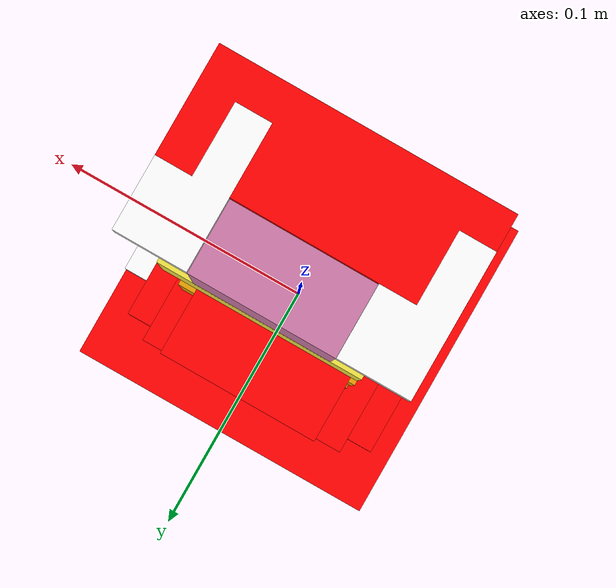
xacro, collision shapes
<?xml version="1.0"?>
<robot name="arm" xmlns:xacro="http://www.ros.org/wiki/xacro">

  <xacro:include filename="$(find armando_description)/urdf/armando_hardware_interface.xacro" />
  <xacro:include filename="$(find armando_description)/urdf/armando_sensors.xacro" />

  <link name="world" />
   <joint name="world_to_base" type="fixed">
    <parent link="world" />
    <child link="base_link" />
    <origin xyz="0 0 0" rpy="0 0 0" />
   </joint>

  <material name="red">
    <color rgba="1 0 0 1"/>
  </material>
  <material name="white">
    <color rgba="1 1 1 1"/>
  </material>

  <link name="base_link">
    <visual>
      <geometry>
        <mesh filename="package://armando_description/meshes/base_link.stl" scale="0.001 0.001 0.001"/>
      </geometry>
      <origin rpy="0 0 0" xyz="0 0 0"/>
      <material name="red"/>
    </visual>
    <collision>
      <geometry>
        <box size="0.12 0.12 0.05"/>
      </geometry>
      <origin rpy="0 0 0" xyz="0 0 0"/>
    </collision>
    <inertial>
      <mass value="0.1"/>
      <inertia ixx="0.001" ixy="0.0" ixz="0.0" iyy="0.001" iyz="0.0" izz="0.001"/>
    </inertial>
  </link>

  <link name="camera_link">
    <visual>
      <geometry>
        <box size="0.02 0.05 0.02"/>
      </geometry>
      <material name="white"/>
    </visual>
    <collision>
      <geometry>
        <box size="0.02 0.05 0.02"/>
      </geometry>
    </collision>
    <inertial>
      <mass value="0.01"/>
      <inertia ixx="1e-6" ixy="0" ixz="0" iyy="1e-6" iyz="0" izz="1e-6"/>
    </inertial>
  </link>

  <joint name="camera_joint" type="fixed">
    <parent link="base_link"/>
    <child link="camera_link"/>
    <origin xyz="0.05 0 0.025" rpy="0 0 0"/>
  </joint>

  <joint name="base_1_2" type="fixed">
    <parent link="base_link"/>
    <child link="base_turn"/>
    <origin xyz="-0.0011 -0.011 0.05"/>
  </joint>

  <link name="base_turn">
    <visual>
      <geometry>
        <mesh filename="package://armando_description/meshes/base_turn.stl" scale="0.001 0.001 0.001"/>
      </geometry>
      <origin rpy="0 0 0" xyz="0 0 0"/>
      <material name="red"/>
    </visual>
    <collision>
      <geometry>
        <box size="0.1 0.1 0.03"/>
      </geometry>
      <origin rpy="0 0 0" xyz="0 0 0"/>
    </collision>
    <inertial>
      <mass value="0.1"/>
      <inertia ixx="0.001" ixy="0.0" ixz="0.0" iyy="0.001" iyz="0.0" izz="0.001"/>
    </inertial>
  </link>

  <joint name="j0" type="revolute">
    <parent link="base_turn"/>
    <child link="base_turn_rot"/>
    <origin xyz="-0.0 0.0155 0.013" rpy = "0 0 -1.57"/>
    <axis xyz="0 0 1" />
    <limit effort="300" velocity="0.1" lower="-2.57" upper="2.57"/>
    <dynamics damping="5.0" friction="1.0"/>
  </joint>

  <link name="base_turn_rot">
    <visual>
      <geometry>
        <mesh filename="package://armando_description/meshes/base_turn_table_rot.stl" scale="0.001 0.001 0.001"/>
      </geometry>
      <material name="red"/>
    </visual>
    <collision>
      <geometry>
        <box size="0.08 0.08 0.03"/>
      </geometry>
      <origin rpy="0 0 0" xyz="0 0 0"/>
    </collision>
    <inertial>
      <mass value="0.1"/>
      <inertia ixx="0.001" ixy="0.0" ixz="0.0" iyy="0.001" iyz="0.0" izz="0.001"/>
    </inertial>
  </link>

  <joint name="base_turn_rot_dyn2" type="fixed">
    <parent link="base_turn_rot"/>
    <child link="dyn2"/>
    <origin xyz="0 0 0.0385" rpy="0 1.57 1.57 "/>
  </joint>

  <link name="dyn2">
    <visual>
      <geometry>
        <mesh filename="package://armando_description/meshes/dyn.stl" scale="0.01 0.01 0.01"/>
      </geometry>
      <origin rpy="0 0 0" xyz="0 0 0"/>
    </visual>
    <collision>
      <geometry>
        <box size="0.04 0.04 0.06"/>
      </geometry>
      <origin rpy="0 0 0" xyz="0 0 0"/>
    </collision>
     <inertial>
      <mass value="0.1"/>
      <inertia ixx="6.90013881e-05" ixy="0.0" ixz="0.0" iyy="1.24554875e-04" iyz="0.0" izz="1.04295793e-04"/>
    </inertial>
  </link>

  <joint name="j1" type="revolute">
    <parent link="dyn2"/>
    <child link="dyn2_r"/>
    <origin xyz="0 0 0.0" rpy="0 0 0"/>
    <axis xyz="0 0 1" />
    <limit effort="300" velocity="0.1" lower="-3.14" upper="3.14"/>
    <dynamics damping="5.0" friction="1.0"/>
  </joint>

  <link name="dyn2_r">
  </link>

  <joint name="dyn2_f4" type="fixed">
    <parent link="dyn2_r"/>
    <child link="f4"/>
    <origin xyz="-0.047 0.0 -0.003" rpy="0 1.57 1.57"/>
  </joint>

  <link name="f4">
    <visual>
      <geometry>
        <mesh filename="package://armando_description/meshes/f4_n_f3.stl" scale="0.001 0.001 0.001"/>
      </geometry>
      <origin rpy="0 0 0" xyz="0 0 0"/>
      <material name="red"/>
    </visual>
    <collision>
      <geometry>
        <box size="0.05 0.02 0.08"/>
      </geometry>
      <origin rpy="0 0 0" xyz="0 0 0"/>
    </collision>
     <inertial>
      <mass value="0.1"/>
      <inertia ixx="6.90013881e-05" ixy="0.0" ixz="0.0" iyy="1.24554875e-04" iyz="0.0" izz="1.04295793e-04"/>
    </inertial>
  </link>

  <joint name="d4_dyn3" type="fixed">
    <parent link="f4"/>
    <child link="dyn3"/>
    <origin xyz="-0.004 0.0645 0 " rpy="-1.57 3.14 1.57"/>
  </joint>

  <link name="dyn3">
    <visual>
      <geometry>
        <mesh filename="package://armando_description/meshes/dyn.stl" scale="0.01 0.01 0.01"/>
      </geometry>
      <origin rpy="0 0 0" xyz="0 0 0"/>
    </visual>
    <collision>
      <geometry>
        <box size="0.04 0.04 0.06"/>
      </geometry>
      <origin rpy="0 0 0" xyz="0 0 0"/>
    </collision>
     <inertial>
      <mass value="0.1"/>
      <inertia ixx="6.90013881e-05" ixy="0.0" ixz="0.0" iyy="1.24554875e-04" iyz="0.0" izz="1.04295793e-04"/>
    </inertial>
  </link>

  <joint name="j2" type="revolute">
    <parent link="dyn3"/>
    <child link="dyn3_r"/>
    <origin xyz="0 0 0.0" rpy="0 0 0"/>
    <axis xyz="0 0 1" />
    <limit effort="300" velocity="0.1" lower="-3.14" upper="3.14"/>
    <dynamics damping="5.0" friction="1.0"/>
  </joint>

 <link name="dyn3_r">
  </link>

  <joint name="dyn3_f5" type="fixed">
    <parent link="dyn3_r"/>
    <child link="f5"/>
    <origin xyz="-0.046 -0.0 -0.002" rpy="1.57 1.57 3.1415 "/>
  </joint>

  <link name="f5">
    <visual>
      <geometry>
        <mesh filename="package://armando_description/meshes/f4_n_f3.stl" scale="0.001 0.001 0.001"/>
      </geometry>
      <origin rpy="0 0 0" xyz="0 0 0"/>
      <material name="red"/>
    </visual>
    <collision>
      <geometry>
        <box size="0.05 0.02 0.08"/>
      </geometry>
      <origin rpy="0 0 0" xyz="0 0 0"/>
    </collision>
    <inertial>
      <mass value="0.1"/>
      <inertia ixx="0.001" ixy="0.0" ixz="0.0" iyy="0.001" iyz="0.0" izz="0.001"/>
    </inertial>
  </link>

  <joint name="f5_dyn4" type="fixed">
    <parent link="f5"/>
    <child link="dyn4"/>
    <origin xyz="-0.004 0.065 -0.0" rpy="-1.57 3.1415 1.57 "/>
  </joint>

  <link name="dyn4">
    <visual>
      <geometry>
        <mesh filename="package://armando_description/meshes/dyn.stl" scale="0.01 0.01 0.01"/>
      </geometry>
      <origin rpy="0 0 0" xyz="0 0 0"/>
    </visual>
    <collision>
      <geometry>
        <box size="0.04 0.04 0.06"/>
      </geometry>
      <origin rpy="0 0 0" xyz="0 0 0"/>
    </collision>
    <inertial>
      <mass value="0.1"/>
      <inertia ixx="6.90013881e-05" ixy="0.0" ixz="0.0" iyy="1.24554875e-04" iyz="0.0" izz="1.04295793e-04"/>
    </inertial>
  </link>

  <joint name="j3" type="revolute">
    <parent link="dyn4"/>
    <child link="dyn4_r"/>
    <origin xyz="0 0 0.0" rpy="0 0 0"/>
    <axis xyz="0 0 1" />
    <limit effort="300" velocity="0.1" lower="-3.14" upper="3.14"/>
    <dynamics damping="5.0" friction="1.0"/>
  </joint>

  <link name="dyn4_r">
  </link>

  <joint name="f5_wrist" type="fixed">
    <parent link="dyn4_r"/>
    <child link="wrist"/>
    <origin xyz="-0.017 -0.013 0.003" rpy="1.57 1.57 -1.57"/>
  </joint>

  <link name="wrist">
    <visual>
      <geometry>
        <mesh filename="package://armando_description/meshes/wrist.stl" scale="0.001 0.001 0.001"/>
      </geometry>
      <origin rpy="0 0 0" xyz="0 0 0"/>
      <material name="red"/>
    </visual>
    <collision>
      <geometry>
        <box size="0.03 0.03 0.04"/>
      </geometry>
      <origin rpy="0 0 0" xyz="0 0 0"/>
    </collision>
     <inertial>
      <mass value="0.1"/>
      <inertia ixx="6.90013881e-05" ixy="0.0" ixz="0.0" iyy="1.24554875e-04" iyz="0.0" izz="1.04295793e-04"/>
    </inertial>
  </link>

  <joint name="wrist_dyn5" type="fixed">
    <parent link="wrist"/>
    <child link="dyn5"/>
    <origin xyz="0.0038 -0.013 0.0275" rpy="0 0 1.57"/>
  </joint>

  <link name="dyn5">
    <visual>
      <geometry>
        <mesh filename="package://armando_description/meshes/dyn.stl" scale="0.01 0.01 0.01"/>
      </geometry>
      <origin rpy="0 0 0" xyz="0 0 0"/>
    </visual>
    <collision>
      <geometry>
        <box size="0.04 0.04 0.06"/>
      </geometry>
      <origin rpy="0 0 0" xyz="0 0 0"/>
    </collision>
    <inertial>
      <mass value="0.1"/>
      <inertia ixx="6.90013881e-05" ixy="0.0" ixz="0.0" iyy="1.24554875e-04" iyz="0.0" izz="1.04295793e-04"/>
    </inertial>
  </link>

  <joint name="dyn5_dyn5_r" type="fixed">
    <parent link="dyn5"/>
    <child link="dyn5_r"/>
    <origin xyz="0 0 0.0" rpy="0 0 0"/>
  </joint>

  <link name="dyn5_r">
  </link>

  <joint name="wrist_rotate_dyn5" type="fixed">
    <parent link="dyn5_r"/>
    <child link="crawer_base"/>
    <origin xyz="0.015 0 0.019" rpy="0 0 1.57"/>
  </joint>

  <link name="crawer_base">
    <visual>
      <geometry>
        <mesh filename="package://armando_description/meshes/the_crawer_base.stl" scale="0.001 0.001 0.001"/>
      </geometry>
      <origin rpy="0 0 0" xyz="0 0 0"/>
      <material name="red"/>
    </visual>
    <collision>
      <geometry>
        <box size="0.08 0.03 0.03"/>
      </geometry>
      <origin rpy="0 0 0" xyz="0 0 0"/>
    </collision>
    <inertial>
      <mass value="0.1"/>
      <inertia ixx="6.90013881e-05" ixy="0.0" ixz="0.0" iyy="1.24554875e-04" iyz="0.0" izz="1.04295793e-04"/>
    </inertial>
  </link>

  <joint name="crawer_base_crawer_left" type="fixed">
    <parent link="crawer_base"/>
    <child link="crawer_left"/>
    <origin xyz="-0.03 0.015 0.01" rpy="0 -1.57 0"/>
  </joint>

  <link name="crawer_left">
    <visual>
      <geometry>
        <mesh filename="package://armando_description/meshes/the_crawer.stl" scale="0.001 0.001 0.001"/>
      </geometry>
      <origin rpy="0 0 0" xyz="0 0 0"/>
      <material name="white"/>
    </visual>
    <collision>
      <geometry>
        <box size="0.01 0.04 0.02"/>
      </geometry>
      <origin rpy="0 0 0" xyz="0 0 0"/>
    </collision>
    <inertial>
      <mass value="0.1"/>
      <inertia ixx="6.90013881e-05" ixy="0.0" ixz="0.0" iyy="1.24554875e-04" iyz="0.0" izz="1.04295793e-04"/>
    </inertial>
  </link>

  <joint name="crawer_base_crawer_right" type="fixed">
    <parent link="crawer_base"/>
    <child link="crawer_right"/>
    <origin xyz="0.03 0.015 0.01" rpy="3.1415 -1.57 0"/>
  </joint>

  <link name="crawer_right">
    <visual>
      <geometry>
        <mesh filename="package://armando_description/meshes/the_crawer.stl" scale="0.001 0.001 0.001"/>
      </geometry>
      <origin rpy="0 0 0" xyz="0 0 0"/>
      <material name="white"/>
    </visual>
    <collision>
      <geometry>
        <box size="0.01 0.04 0.02"/>
      </geometry>
      <origin rpy="0 0 0" xyz="0 0 0"/>
    </collision>
    <inertial>
      <mass value="0.1"/>
      <inertia ixx="6.90013881e-05" ixy="0.0" ixz="0.0" iyy="1.24554875e-04" iyz="0.0" izz="1.04295793e-04"/>
    </inertial>
  </link>

  <xacro:armando_hardware_interface />

  <xacro:camera_sensor />

 <gazebo>
    <plugin name="gz_ros2_control::GazeboSimROS2ControlPlugin"
            filename="libgz_ros2_control-system.so">
      <controller_manager_name>armando_controller_manager</controller_manager_name>
      <parameters>$(find armando_gazebo)/config/armando_controllers.yaml</parameters>
    </plugin>
  </gazebo>

</robot>
